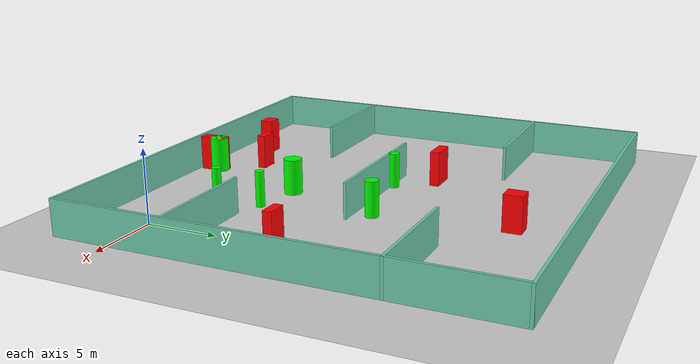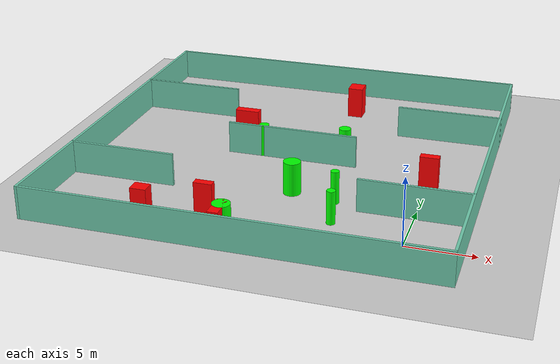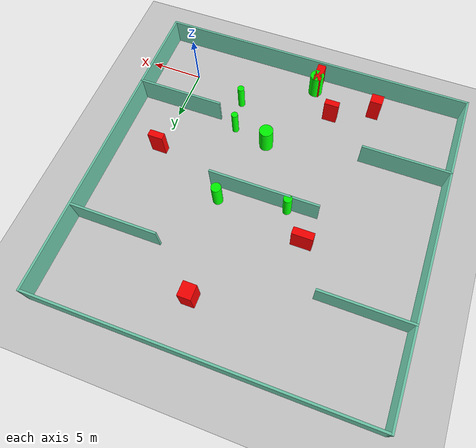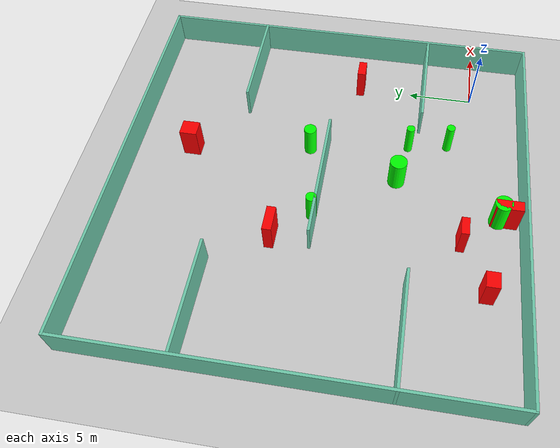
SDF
<sdf version="1.7">
 <world name="default">
  <light name="sun" type="directional">
   <pose>0 0 10 0 -0 0</pose>
   <diffuse>0.8 0.8 0.8 1</diffuse>
   <specular>0.2 0.2 0.2 1</specular>
   <attenuation>
    <range>1000</range>
    <constant>0.9</constant>
    <linear>0.01</linear>
    <quadratic>0.001</quadratic>
   </attenuation>
   <direction>-0.5 0.1 -0.9</direction>
   <spot><inner_angle>0</inner_angle><outer_angle>0</outer_angle><falloff>0</falloff></spot>
  </light>
  <model name="ground_plane">
   <static>1</static>
   <link name="link">
    <collision name="collision">
     <geometry><plane><normal>0 0 1</normal><size>100 100</size></plane></geometry>
     <surface>
      <contact><collide_bitmask>65535</collide_bitmask></contact>
      <friction><ode><mu>100</mu><mu2>50</mu2></ode></friction>
     </surface>
    </collision>
    <visual name="visual">
     <cast_shadows>0</cast_shadows>
     <geometry><plane><normal>0 0 1</normal><size>100 100</size></plane></geometry>
     <material>
      <script><uri>file://media/materials/scripts/gazebo.material</uri><name>Gazebo/Grey</name></script>
     </material>
    </visual>
   </link>
  </model>
  <gravity>0 0 -9.8</gravity>
  <magnetic_field>6e-06 2.3e-05 -4.2e-05</magnetic_field>
  <atmosphere type="adiabatic"/>
  <physics type="ode">
   <max_step_size>0.001</max_step_size>
   <real_time_factor>1</real_time_factor>
   <real_time_update_rate>1000</real_time_update_rate>
  </physics>
  <scene><ambient>0.4 0.4 0.4 1</ambient><background>0.7 0.7 0.7 1</background><shadows>1</shadows></scene>
  <spherical_coordinates>
   <surface_model>EARTH_WGS84</surface_model>
   <latitude_deg>0</latitude_deg>
   <longitude_deg>0</longitude_deg>
   <elevation>0</elevation>
   <heading_deg>0</heading_deg>
  </spherical_coordinates>
  <model name="my_base_walls">
   <link name="Wall_10">
    <collision name="Wall_10_Collision">
     <geometry><box><size>8.2 0.2 2.5</size></box></geometry>
     <pose>0 0 1.25 0 -0 0</pose>
    </collision>
    <visual name="Wall_10_Visual">
     <pose>0 0 1.25 0 -0 0</pose>
     <geometry><box><size>8.2 0.2 2.5</size></box></geometry>
     <material>
      <script><uri>file://media/materials/scripts/gazebo.material</uri><name>Gazebo/Grey</name></script>
      <ambient>0.435294 0.796078 0.67451 1</ambient>
     </material>
     <meta><layer>0</layer></meta>
    </visual>
    <pose>-11 -7 0 0 -0 0</pose>
   </link>
   <link name="Wall_12">
    <collision name="Wall_12_Collision">
     <geometry><box><size>8.2 0.2 2.5</size></box></geometry>
     <pose>0 0 1.25 0 -0 0</pose>
    </collision>
    <visual name="Wall_12_Visual">
     <pose>0 0 1.25 0 -0 0</pose>
     <geometry><box><size>8.2 0.2 2.5</size></box></geometry>
     <material>
      <script><uri>file://media/materials/scripts/gazebo.material</uri><name>Gazebo/Grey</name></script>
      <ambient>0.435294 0.796078 0.67451 1</ambient>
     </material>
     <meta><layer>0</layer></meta>
    </visual>
    <pose>-11 7 0 0 -0 0</pose>
   </link>
   <link name="Wall_14">
    <collision name="Wall_14_Collision">
     <geometry><box><size>8.2 0.2 2.5</size></box></geometry>
     <pose>0 0 1.25 0 -0 0</pose>
    </collision>
    <visual name="Wall_14_Visual">
     <pose>0 0 1.25 0 -0 0</pose>
     <geometry><box><size>8.2 0.2 2.5</size></box></geometry>
     <material>
      <script><uri>file://media/materials/scripts/gazebo.material</uri><name>Gazebo/Grey</name></script>
      <ambient>0.435294 0.796078 0.67451 1</ambient>
     </material>
     <meta><layer>0</layer></meta>
    </visual>
    <pose>11 7 0 0 -0 3.14159</pose>
   </link>
   <link name="Wall_16">
    <collision name="Wall_16_Collision">
     <geometry><box><size>10.2 0.2 2.5</size></box></geometry>
     <pose>0 0 1.25 0 -0 0</pose>
    </collision>
    <visual name="Wall_16_Visual">
     <pose>0 0 1.25 0 -0 0</pose>
     <geometry><box><size>10.2 0.2 2.5</size></box></geometry>
     <material>
      <script><uri>file://media/materials/scripts/gazebo.material</uri><name>Gazebo/Grey</name></script>
      <ambient>0.435294 0.796078 0.67451 1</ambient>
     </material>
     <meta><layer>0</layer></meta>
    </visual>
    <pose>0 0 0 0 -0 3.14159</pose>
   </link>
   <link name="Wall_2">
    <collision name="Wall_2_Collision">
     <geometry><box><size>30.2 0.2 2.5</size></box></geometry>
     <pose>0 0 1.25 0 -0 0</pose>
    </collision>
    <visual name="Wall_2_Visual">
     <pose>0 0 1.25 0 -0 0</pose>
     <geometry><box><size>30.2 0.2 2.5</size></box></geometry>
     <material>
      <script><uri>file://media/materials/scripts/gazebo.material</uri><name>Gazebo/Grey</name></script>
      <ambient>0.435294 0.796078 0.67451 1</ambient>
     </material>
     <meta><layer>0</layer></meta>
    </visual>
    <pose>0 -15 0 0 -0 3.14159</pose>
   </link>
   <link name="Wall_3">
    <collision name="Wall_3_Collision">
     <geometry><box><size>30.2 0.2 2.5</size></box></geometry>
     <pose>0 0 1.25 0 -0 0</pose>
    </collision>
    <visual name="Wall_3_Visual">
     <pose>0 0 1.25 0 -0 0</pose>
     <geometry><box><size>30.2 0.2 2.5</size></box></geometry>
     <material>
      <script><uri>file://media/materials/scripts/gazebo.material</uri><name>Gazebo/Grey</name></script>
      <ambient>0.435294 0.796078 0.67451 1</ambient>
     </material>
     <meta><layer>0</layer></meta>
    </visual>
    <pose>-15 0 0 0 -0 1.5708</pose>
   </link>
   <link name="Wall_4">
    <collision name="Wall_4_Collision">
     <geometry><box><size>30.2 0.2 2.5</size></box></geometry>
     <pose>0 0 1.25 0 -0 0</pose>
    </collision>
    <visual name="Wall_4_Visual">
     <pose>0 0 1.25 0 -0 0</pose>
     <geometry><box><size>30.2 0.2 2.5</size></box></geometry>
     <material>
      <script><uri>file://media/materials/scripts/gazebo.material</uri><name>Gazebo/Grey</name></script>
      <ambient>0.435294 0.796078 0.67451 1</ambient>
     </material>
     <meta><layer>0</layer></meta>
    </visual>
    <pose>0 15 0 0 -0 0</pose>
   </link>
   <link name="Wall_6">
    <collision name="Wall_6_Collision">
     <geometry><box><size>30.2 0.2 2.5</size></box></geometry>
     <pose>0 0 1.25 0 -0 0</pose>
    </collision>
    <visual name="Wall_6_Visual">
     <pose>0 0 1.25 0 -0 0</pose>
     <geometry><box><size>30.2 0.2 2.5</size></box></geometry>
     <material>
      <script><uri>file://media/materials/scripts/gazebo.material</uri><name>Gazebo/Grey</name></script>
      <ambient>0.435294 0.796078 0.67451 1</ambient>
     </material>
     <meta><layer>0</layer></meta>
    </visual>
    <pose>15 0 0 0 -0 1.5708</pose>
   </link>
   <link name="Wall_8">
    <collision name="Wall_8_Collision">
     <geometry><box><size>8.2 0.2 2.5</size></box></geometry>
     <pose>0 0 1.25 0 -0 0</pose>
    </collision>
    <visual name="Wall_8_Visual">
     <pose>0 0 1.25 0 -0 0</pose>
     <geometry><box><size>8.2 0.2 2.5</size></box></geometry>
     <material>
      <script><uri>file://media/materials/scripts/gazebo.material</uri><name>Gazebo/Grey</name></script>
      <ambient>0.435294 0.796078 0.67451 1</ambient>
     </material>
     <meta><layer>0</layer></meta>
    </visual>
    <pose>11 -7 0 0 -0 3.14159</pose>
   </link>
   <static>1</static>
   <pose>-11 11 0 0 -0 0</pose>
  </model>
  <model name="cylinder1">
   <static>1</static>
   <link name="link">
    <inertial>
     <mass>1</mass>
     <inertia><ixx>0.5</ixx><ixy>0</ixy><ixz>0</ixz><iyy>0.5</iyy><iyz>0</iyz><izz>1</izz></inertia>
    </inertial>
    <collision name="collision">
     <geometry><cylinder><radius>0.38804908639414015</radius><length>2.5</length></cylinder></geometry>
    </collision>
    <visual name="visual">
     <geometry><cylinder><radius>0.38804908639414015</radius><length>2.5</length></cylinder></geometry>
     <material>
      <ambient>0 1 0 1</ambient>
      <diffuse>0 1 0 1</diffuse>
      <specular>0.1 0.1 0.1 1</specular>
      <emissive>0 0 0 0</emissive>
     </material>
    </visual>
   </link>
   <pose>-13.325004868565308 11.273684909054197 1.25 0 0 0</pose>
  </model>
  <model name="cylinder2">
   <static>1</static>
   <link name="link">
    <inertial>
     <mass>1</mass>
     <inertia><ixx>0.5</ixx><ixy>0</ixy><ixz>0</ixz><iyy>0.5</iyy><iyz>0</iyz><izz>1</izz></inertia>
    </inertial>
    <collision name="collision">
     <geometry><cylinder><radius>0.4669557828238179</radius><length>2.5</length></cylinder></geometry>
    </collision>
    <visual name="visual">
     <geometry><cylinder><radius>0.4669557828238179</radius><length>2.5</length></cylinder></geometry>
     <material>
      <ambient>0 1 0 1</ambient>
      <diffuse>0 1 0 1</diffuse>
      <specular>0.1 0.1 0.1 1</specular>
      <emissive>0 0 0 0</emissive>
     </material>
    </visual>
   </link>
   <pose>-7.1333089116483634 12.359152227463227 1.25 0 0 0</pose>
  </model>
  <model name="cylinder3">
   <static>1</static>
   <link name="link">
    <inertial>
     <mass>1</mass>
     <inertia><ixx>0.5</ixx><ixy>0</ixy><ixz>0</ixz><iyy>0.5</iyy><iyz>0</iyz><izz>1</izz></inertia>
    </inertial>
    <collision name="collision">
     <geometry><cylinder><radius>0.31006717629335984</radius><length>2.5</length></cylinder></geometry>
    </collision>
    <visual name="visual">
     <geometry><cylinder><radius>0.31006717629335984</radius><length>2.5</length></cylinder></geometry>
     <material>
      <ambient>0 1 0 1</ambient>
      <diffuse>0 1 0 1</diffuse>
      <specular>0.1 0.1 0.1 1</specular>
      <emissive>0 0 0 0</emissive>
     </material>
    </visual>
   </link>
   <pose>-5.872274958568916 4.730266802066348 1.25 0 0 0</pose>
  </model>
  <model name="cylinder4">
   <static>1</static>
   <link name="link">
    <inertial>
     <mass>1</mass>
     <inertia><ixx>0.5</ixx><ixy>0</ixy><ixz>0</ixz><iyy>0.5</iyy><iyz>0</iyz><izz>1</izz></inertia>
    </inertial>
    <collision name="collision">
     <geometry><cylinder><radius>0.6435873481110617</radius><length>2.5</length></cylinder></geometry>
    </collision>
    <visual name="visual">
     <geometry><cylinder><radius>0.6435873481110617</radius><length>2.5</length></cylinder></geometry>
     <material>
      <ambient>0 1 0 1</ambient>
      <diffuse>0 1 0 1</diffuse>
      <specular>0.1 0.1 0.1 1</specular>
      <emissive>0 0 0 0</emissive>
     </material>
    </visual>
   </link>
   <pose>-9.236339904867858 5.385331551527452 1.25 0 0 0</pose>
  </model>
  <model name="cylinder5">
   <static>1</static>
   <link name="link">
    <inertial>
     <mass>1</mass>
     <inertia><ixx>0.5</ixx><ixy>0</ixy><ixz>0</ixz><iyy>0.5</iyy><iyz>0</iyz><izz>1</izz></inertia>
    </inertial>
    <collision name="collision">
     <geometry><cylinder><radius>0.31959743461820406</radius><length>2.5</length></cylinder></geometry>
    </collision>
    <visual name="visual">
     <geometry><cylinder><radius>0.31959743461820406</radius><length>2.5</length></cylinder></geometry>
     <material>
      <ambient>0 1 0 1</ambient>
      <diffuse>0 1 0 1</diffuse>
      <specular>0.1 0.1 0.1 1</specular>
      <emissive>0 0 0 0</emissive>
     </material>
    </visual>
   </link>
   <pose>-5.331545697901198 1.6897523771762515 1.25 0 0 0</pose>
  </model>
  <model name="cylinder6">
   <static>1</static>
   <link name="link">
    <inertial>
     <mass>1</mass>
     <inertia><ixx>0.5</ixx><ixy>0</ixy><ixz>0</ixz><iyy>0.5</iyy><iyz>0</iyz><izz>1</izz></inertia>
    </inertial>
    <collision name="collision">
     <geometry><cylinder><radius>0.6547779456171778</radius><length>2.5</length></cylinder></geometry>
    </collision>
    <visual name="visual">
     <geometry><cylinder><radius>0.6547779456171778</radius><length>2.5</length></cylinder></geometry>
     <material>
      <ambient>0 1 0 1</ambient>
      <diffuse>0 1 0 1</diffuse>
      <specular>0.1 0.1 0.1 1</specular>
      <emissive>0 0 0 0</emissive>
     </material>
    </visual>
   </link>
   <pose>-11.746036348726552 -2.2840409952689518 1.25 0 0 0</pose>
  </model>
  <model name="box1">
   <static>1</static>
   <link name="link">
    <inertial>
     <mass>1</mass>
     <inertia><ixx>0.083</ixx><ixy>0</ixy><ixz>0</ixz><iyy>0.083</iyy><iyz>0</iyz><izz>0.083</izz></inertia>
    </inertial>
    <collision name="collision">
     <geometry><box><size>1.3567369215823946 0.5797067006948036 2.5</size></box></geometry>
    </collision>
    <visual name="visual">
     <geometry><box><size>1.3567369215823946 0.5797067006948036 2.5</size></box></geometry>
     <material>
      <ambient>1 0 0 1</ambient>
      <diffuse>1 0 0 1</diffuse>
      <specular>0.1 0.1 0.1 1</specular>
      <emissive>0 0 0 0</emissive>
     </material>
    </visual>
    <sensor name="my_contact" type="contact">
     <contact><collision>box_collision</collision><topic>__default_topic__</topic></contact>
    </sensor>
   </link>
   <pose>-14.025880721679972 0.3641625535867621 1.25 0 0 0</pose>
  </model>
  <model name="box2">
   <static>1</static>
   <link name="link">
    <inertial>
     <mass>1</mass>
     <inertia><ixx>0.083</ixx><ixy>0</ixy><ixz>0</ixz><iyy>0.083</iyy><iyz>0</iyz><izz>0.083</izz></inertia>
    </inertial>
    <collision name="collision">
     <geometry><box><size>0.7735944777068271 1.9567135221774172 2.5</size></box></geometry>
    </collision>
    <visual name="visual">
     <geometry><box><size>0.7735944777068271 1.9567135221774172 2.5</size></box></geometry>
     <material>
      <ambient>1 0 0 1</ambient>
      <diffuse>1 0 0 1</diffuse>
      <specular>0.1 0.1 0.1 1</specular>
      <emissive>0 0 0 0</emissive>
     </material>
    </visual>
    <sensor name="my_contact" type="contact">
     <contact><collision>box_collision</collision><topic>__default_topic__</topic></contact>
    </sensor>
   </link>
   <pose>-11.834879618103667 -2.7096643031110577 1.25 0 0 0</pose>
  </model>
  <model name="box3">
   <static>1</static>
   <link name="link">
    <inertial>
     <mass>1</mass>
     <inertia><ixx>0.083</ixx><ixy>0</ixy><ixz>0</ixz><iyy>0.083</iyy><iyz>0</iyz><izz>0.083</izz></inertia>
    </inertial>
    <collision name="collision">
     <geometry><box><size>1.2004798175097022 1.2987702314467477 2.5</size></box></geometry>
    </collision>
    <visual name="visual">
     <geometry><box><size>1.2004798175097022 1.2987702314467477 2.5</size></box></geometry>
     <material>
      <ambient>1 0 0 1</ambient>
      <diffuse>1 0 0 1</diffuse>
      <specular>0.1 0.1 0.1 1</specular>
      <emissive>0 0 0 0</emissive>
     </material>
    </visual>
    <sensor name="my_contact" type="contact">
     <contact><collision>box_collision</collision><topic>__default_topic__</topic></contact>
    </sensor>
   </link>
   <pose>-8.44446862561967 21.52954960742193 1.25 0 0 0</pose>
  </model>
  <model name="box4">
   <static>1</static>
   <link name="link">
    <inertial>
     <mass>1</mass>
     <inertia><ixx>0.083</ixx><ixy>0</ixy><ixz>0</ixz><iyy>0.083</iyy><iyz>0</iyz><izz>0.083</izz></inertia>
    </inertial>
    <collision name="collision">
     <geometry><box><size>1.893198905444403 0.6676415139337051 2.5</size></box></geometry>
    </collision>
    <visual name="visual">
     <geometry><box><size>1.893198905444403 0.6676415139337051 2.5</size></box></geometry>
     <material>
      <ambient>1 0 0 1</ambient>
      <diffuse>1 0 0 1</diffuse>
      <specular>0.1 0.1 0.1 1</specular>
      <emissive>0 0 0 0</emissive>
     </material>
    </visual>
    <sensor name="my_contact" type="contact">
     <contact><collision>box_collision</collision><topic>__default_topic__</topic></contact>
    </sensor>
   </link>
   <pose>-15.539941751216777 13.859872655582127 1.25 0 0 0</pose>
  </model>
  <model name="box5">
   <static>1</static>
   <link name="link">
    <inertial>
     <mass>1</mass>
     <inertia><ixx>0.083</ixx><ixy>0</ixy><ixz>0</ixz><iyy>0.083</iyy><iyz>0</iyz><izz>0.083</izz></inertia>
    </inertial>
    <collision name="collision">
     <geometry><box><size>1.1653329750004429 0.9670207284661477 2.5</size></box></geometry>
    </collision>
    <visual name="visual">
     <geometry><box><size>1.1653329750004429 0.9670207284661477 2.5</size></box></geometry>
     <material>
      <ambient>1 0 0 1</ambient>
      <diffuse>1 0 0 1</diffuse>
      <specular>0.1 0.1 0.1 1</specular>
      <emissive>0 0 0 0</emissive>
     </material>
    </visual>
    <sensor name="my_contact" type="contact">
     <contact><collision>box_collision</collision><topic>__default_topic__</topic></contact>
    </sensor>
   </link>
   <pose>-17.901604741111925 -1.5238622108327258 1.25 0 0 0</pose>
  </model>
  <model name="box6">
   <static>1</static>
   <link name="link">
    <inertial>
     <mass>1</mass>
     <inertia><ixx>0.083</ixx><ixy>0</ixy><ixz>0</ixz><iyy>0.083</iyy><iyz>0</iyz><izz>0.083</izz></inertia>
    </inertial>
    <collision name="collision">
     <geometry><box><size>1.4133277539756897 0.6268414510745473 2.5</size></box></geometry>
    </collision>
    <visual name="visual">
     <geometry><box><size>1.4133277539756897 0.6268414510745473 2.5</size></box></geometry>
     <material>
      <ambient>1 0 0 1</ambient>
      <diffuse>1 0 0 1</diffuse>
      <specular>0.1 0.1 0.1 1</specular>
      <emissive>0 0 0 0</emissive>
     </material>
    </visual>
    <sensor name="my_contact" type="contact">
     <contact><collision>box_collision</collision><topic>__default_topic__</topic></contact>
    </sensor>
   </link>
   <pose>0.03776679800128235 9.189387676929263 1.25 0 0 0</pose>
  </model>
 </world>
</sdf>
